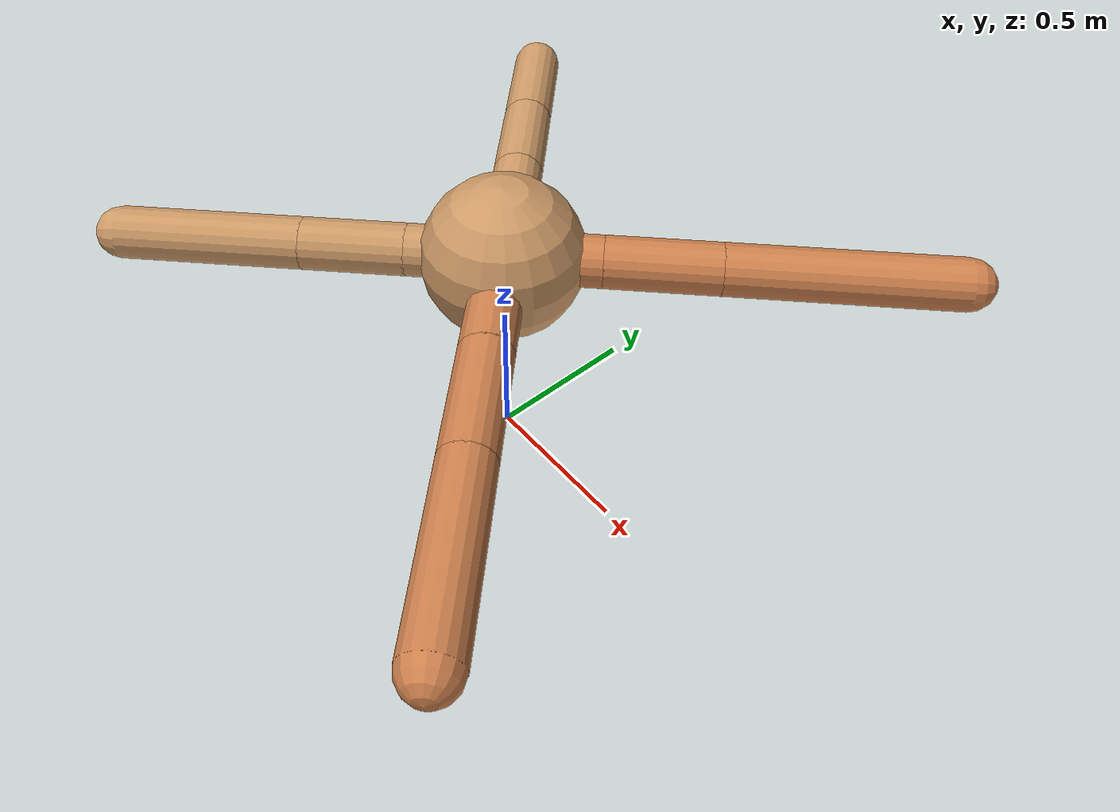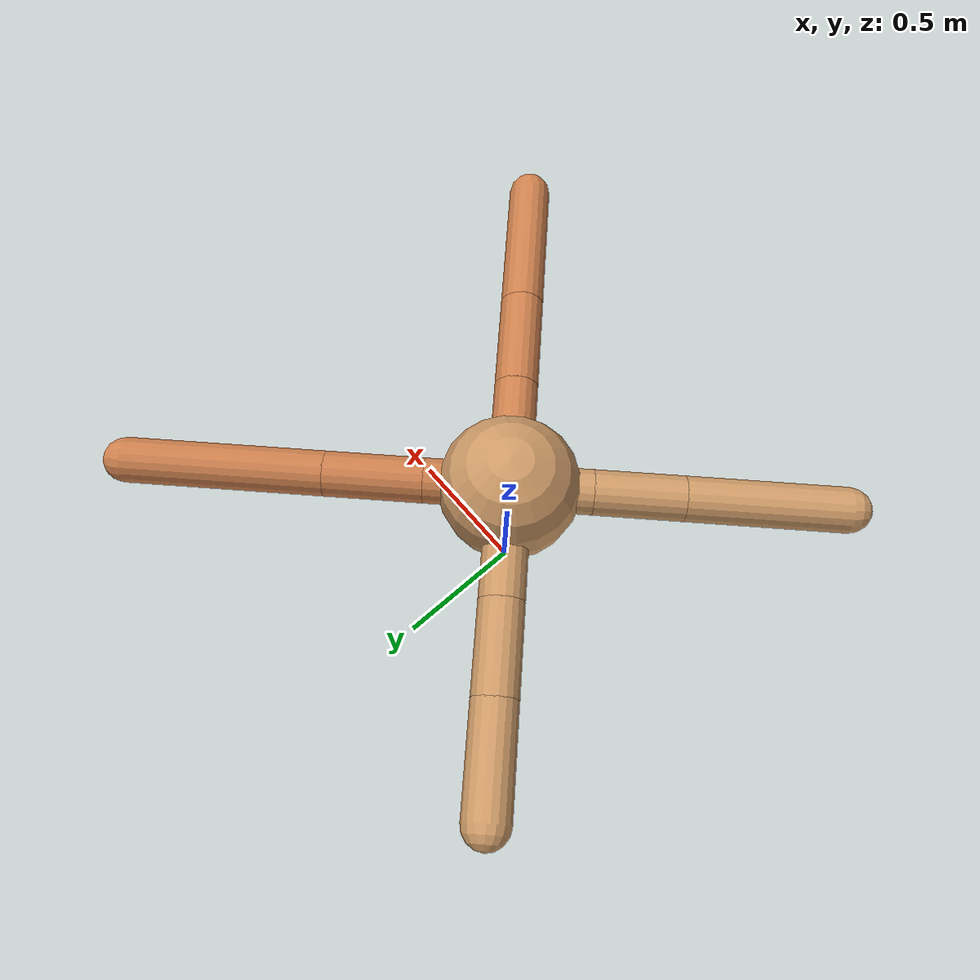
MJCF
<mujoco model="ant">
  <compiler angle="degree" coordinate="local" inertiafromgeom="true" />
  <option integrator="RK4" timestep="0.01" />
  <custom>
    <numeric data="0.0 0.0 0.55 1.0 0.0 0.0 0.0 0.0 1.0 0.0 -1.0 0.0 -1.0 0.0 1.0" name="init_qpos" />
  </custom>
  <default>
    <joint armature="1" damping="1" limited="true" />
    <geom conaffinity="0" condim="3" density="5.0" friction="1.5 0.1 0.1" margin="0.01" rgba="0.8 0.6 0.4 1" />
  </default>
  <worldbody>
    <body name="torso" pos="0 0 0.75">
      <geom name="torso_geom" pos="0 0 0" size="0.25" type="sphere" />

      <body name="front_left_leg" pos="0 0 0">
        <geom fromto="0.0 0.0 0.0 0.2097343576314867 0.2097343576314867 0.0" name="aux_1_geom" size="0.08" type="capsule" rgba=".8 .5 .3 1" />
        <body name="aux_1" pos="0.2097343576314867 0.2097343576314867 0.0">
          <joint axis="0 0 1" name="hip_1" pos="0.0 0.0 0.0" range="-40 40" type="hinge" />
          <geom fromto="0.0 0.0 0.0 0.2449827048524206 0.2449827048524206 0.0" name="left_leg_geom" size="0.08" type="capsule" rgba=".8 .5 .3 1" />
          <body pos="0.2449827048524206 0.2449827048524206 0.0" name="front_left_foot">
            <joint axis="-1 1 0" name="ankle_1" pos="0.0 0.0 0.0" range="30 100" type="hinge" />
            <geom fromto="0.0 0.0 0.0 0.4964480749607881 0.4964480749607881 0.0" name="left_ankle_geom" size="0.08" type="capsule" rgba=".8 .5 .3 1" />
          </body>
        </body>
      </body>
      <body name="front_right_leg" pos="0 0 0">
        <geom fromto="0.0 0.0 0.0 -0.2886768104720064 0.2886768104720064 0.0" name="aux_2_geom" size="0.08" type="capsule" />
        <body name="aux_2" pos="-0.2886768104720064 0.2886768104720064 0.0">
          <joint axis="0 0 1" name="hip_2" pos="0.0 0.0 0.0" range="-40 40" type="hinge" />
          <geom fromto="0.0 0.0 0.0 -0.2223752367497439 0.2223752367497439 0.0" name="right_leg_geom" size="0.08" type="capsule" />
          <body pos="-0.2223752367497439 0.2223752367497439 0.0" name="front_right_foot">
            <joint axis="1 1 0" name="ankle_2" pos="0.0 0.0 0.0" range="-100 -30" type="hinge" />
            <geom fromto="0.0 0.0 0.0 -0.25742089666825424 0.25742089666825424 0.0" name="right_ankle_geom" size="0.08" type="capsule" />
          </body>
        </body>
      </body>
      <body name="left_back_leg" pos="0 0 0">
        <geom fromto="0.0 0.0 0.0 -0.20386706357974635 -0.20386706357974635 0.0" name="aux_3_geom" size="0.08" type="capsule" />
        <body name="aux_3" pos="-0.20386706357974635 -0.20386706357974635 0.0">
          <joint axis="0 0 1" name="hip_3" pos="0.0 0.0 0.0" range="-40 40" type="hinge" />
          <geom fromto="0.0 0.0 0.0 -0.22237493337628847 -0.22237493337628847 0.0" name="back_leg_geom" size="0.08" type="capsule" />
          <body pos="-0.22237493337628847 -0.22237493337628847 0.0" name="left_back_foot">
            <joint axis="-1 1 0" name="ankle_3" pos="0.0 0.0 0.0" range="-100 -30" type="hinge" />
            <geom fromto="0.0 0.0 0.0 -0.39526376867698554 -0.39526376867698554 0.0" name="third_ankle_geom" size="0.08" type="capsule" />
          </body>
        </body>
      </body>
      <body name="right_back_leg" pos="0 0 0">
        <geom fromto="0.0 0.0 0.0 0.27982901564412405 -0.27982901564412405 0.0" name="aux_4_geom" size="0.08" type="capsule" rgba=".8 .5 .3 1" />
        <body name="aux_4" pos="0.27982901564412405 -0.27982901564412405 0.0">
          <joint axis="0 0 1" name="hip_4" pos="0.0 0.0 0.0" range="-40 40" type="hinge" />
          <geom fromto="0.0 0.0 0.0 0.2534627672469449 -0.2534627672469449 0.0" name="rightback_leg_geom" size="0.08" type="capsule" rgba=".8 .5 .3 1" />
          <body pos="0.2534627672469449 -0.2534627672469449 0.0" name="right_back_foot">
            <joint axis="1 1 0" name="ankle_4" pos="0.0 0.0 0.0" range="30 100" type="hinge" />
            <geom fromto="0.0 0.0 0.0 0.3728578355173058 -0.3728578355173058 0.0" name="fourth_ankle_geom" size="0.08" type="capsule" rgba=".8 .5 .3 1" />
          </body>
        </body>
      </body>
    </body>
  </worldbody>
  <actuator>
    <motor ctrllimited="true" ctrlrange="-1.0 1.0" joint="hip_4" gear="150" />
    <motor ctrllimited="true" ctrlrange="-1.0 1.0" joint="ankle_4" gear="150" />
    <motor ctrllimited="true" ctrlrange="-1.0 1.0" joint="hip_1" gear="150" />
    <motor ctrllimited="true" ctrlrange="-1.0 1.0" joint="ankle_1" gear="150" />
    <motor ctrllimited="true" ctrlrange="-1.0 1.0" joint="hip_2" gear="150" />
    <motor ctrllimited="true" ctrlrange="-1.0 1.0" joint="ankle_2" gear="150" />
    <motor ctrllimited="true" ctrlrange="-1.0 1.0" joint="hip_3" gear="150" />
    <motor ctrllimited="true" ctrlrange="-1.0 1.0" joint="ankle_3" gear="150" />
  </actuator>
</mujoco>
